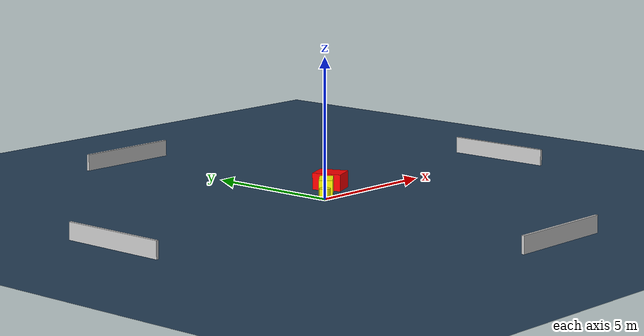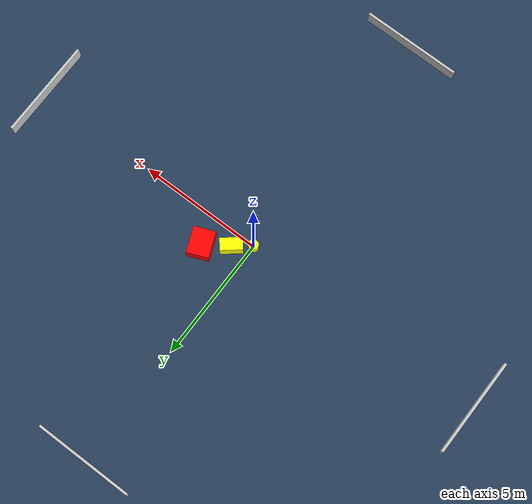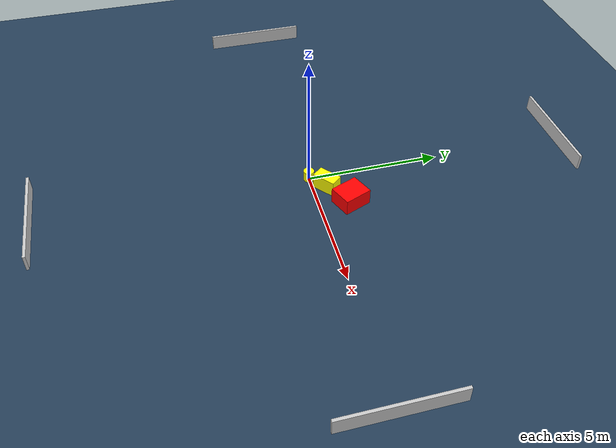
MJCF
<?xml version="1.0" ?>
<mujoco model="generated_environment">
  <option timestep="0.01" integrator="RK4" cone="elliptic"/>
  <default>
    <geom density="1"/>
  </default>
  <asset>
    <texture builtin="gradient" height="3072" name="skybox" rgb1="0.3 0.5 0.7" rgb2="0 0 0" type="skybox" width="512"/>
    <texture builtin="checker" height="300" name="groundplane" rgb1="0.2 0.3 0.4" rgb2="0.1 0.2 0.3" type="2d" width="300"/>
    <material name="groundplane" reflectance="0.2" texrepeat="5 5" texture="groundplane"/>
  </asset>
  <worldbody>
    <light dir="0 0 -1" directional="true" pos="0 0 1.5"/>
    <geom condim="3" friction="0.5 0.005 0.001" material="groundplane" name="floor" pos="0 0 0" size="0 0 0.05" type="plane"/>
    <body name="walls">
      <geom name="wall_1" condim="4" pos="-10.0 0.0 0.3" rgba="0.800000011920929 0.800000011920929 0.800000011920929 1.0" size="0.05 2.0 0.3" type="box"/>
      <geom name="wall_2" condim="4" pos="10.0 0.0 0.3" rgba="0.800000011920929 0.800000011920929 0.800000011920929 1.0" size="0.05 2.0 0.3" type="box"/>
      <geom name="wall_3" condim="4" pos="0.0 -10.0 0.3" rgba="0.800000011920929 0.800000011920929 0.800000011920929 1.0" size="2.0 0.05 0.3" type="box"/>
      <geom name="wall_4" condim="4" pos="0.0 10.0 0.3" rgba="0.800000011920929 0.800000011920929 0.800000011920929 1.0" size="2.0 0.05 0.3" type="box"/>
    </body>
    <body name="robot">
      <joint name="joint_x" type="slide" pos="0 0 0" axis="1 0 0"/>
      <joint name="joint_y" type="slide" pos="0 0 0" axis="0 1 0"/>
      <geom name="robot" type="cylinder" pos="0.0 0.0 0.2" size="0.2 0.2 0.0" mass="5.0" friction="1.0 0.005 0.0001" condim="4" rgba="1.0 1.0 0.0 1.0"/>
    </body>
    <body name="obstacle_1_movable">
      <geom name="obstacle_1_movable" condim="4" pos="0.6458111389705853 0.5150189319060192 0.3" euler="0 0 39.58807483913613" friction="0.0 0.005 0.001" rgba="1.0 1.0 0.0 1.0" size="0.437969279588344 0.24329763809761756 0.3" type="box" mass="0.1"/>
      <joint type="free"/>
    </body>
    <body name="obstacle_2_static">
      <geom name="obstacle_2_static" condim="4" pos="1.5781940506490757 1.1403067227723072 0.3" euler="0 0 202.34437651523345" friction="0.0 0.005 0.001" rgba="1.0 0.0 0.0 1.0" size="0.4368693679863759 0.525730320351744 0.3" type="box"/>
    </body>
  </worldbody>
  <actuator>
    <motor name="actuator_x" joint="joint_x" gear="1" ctrlrange="-1 1"/>
    <motor name="actuator_y" joint="joint_y" gear="1" ctrlrange="-1 1"/>
  </actuator>
</mujoco>
